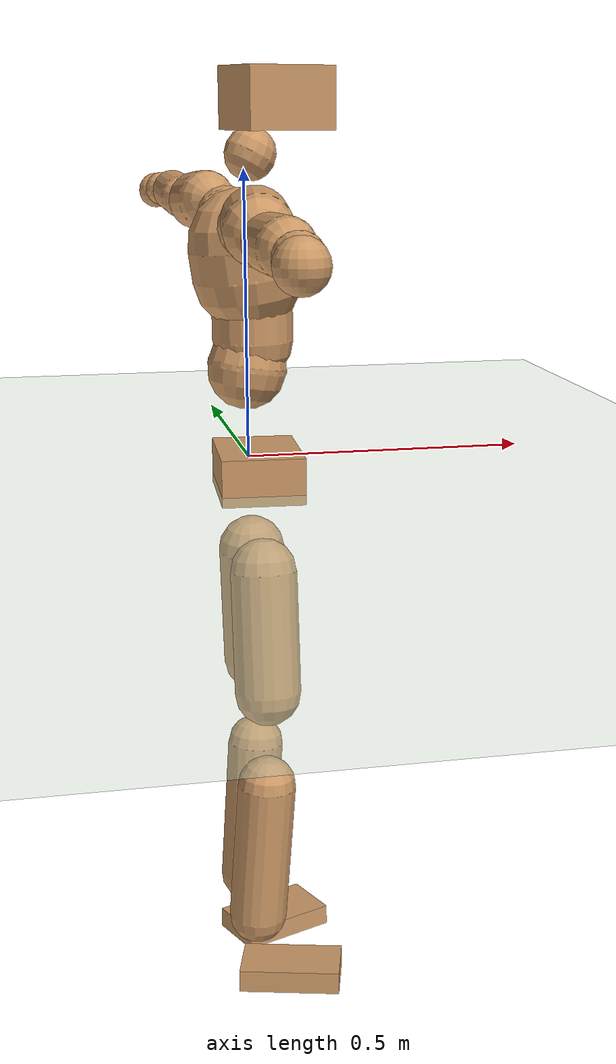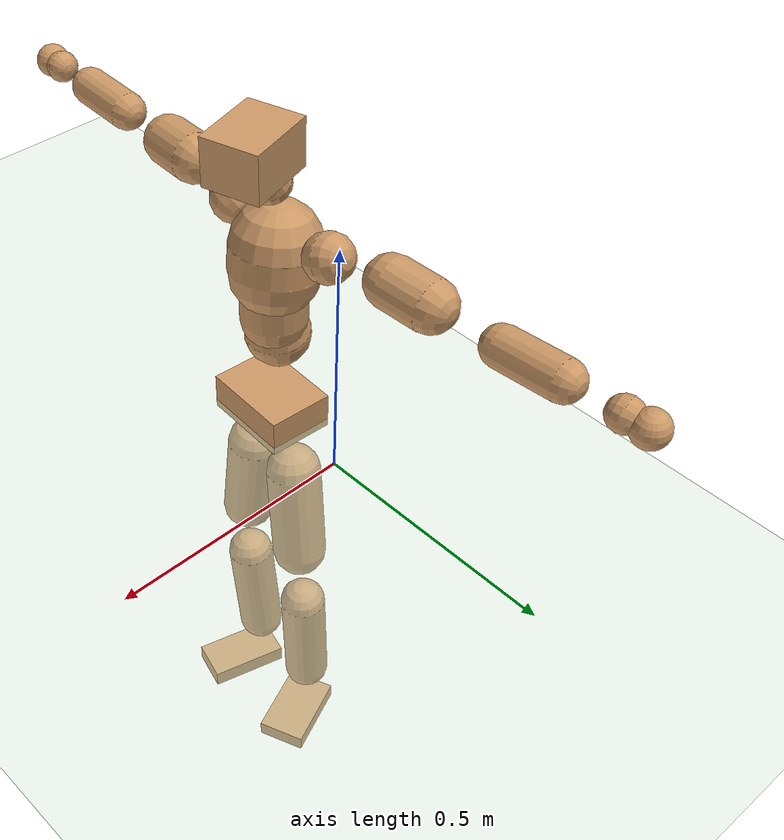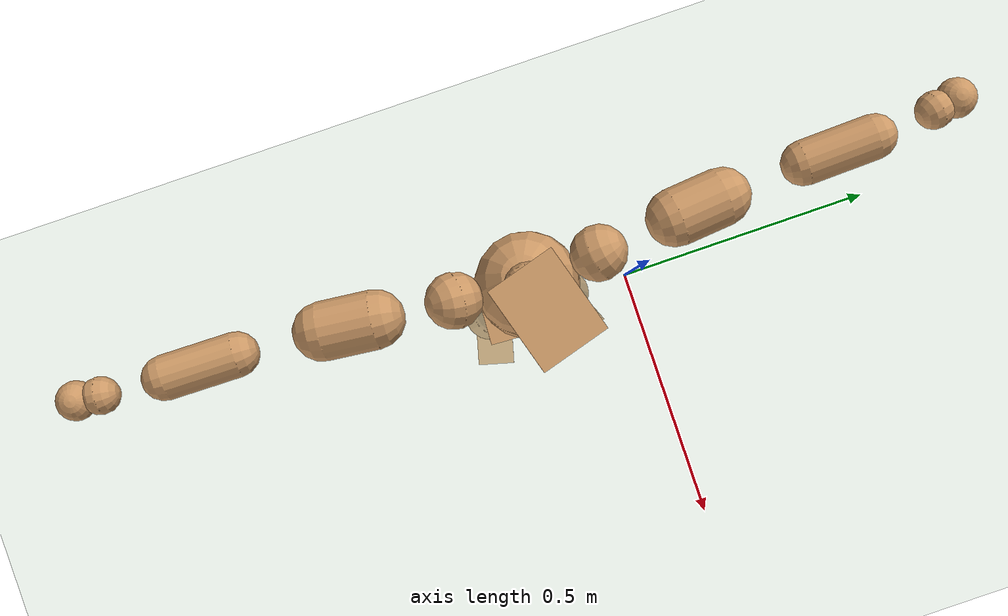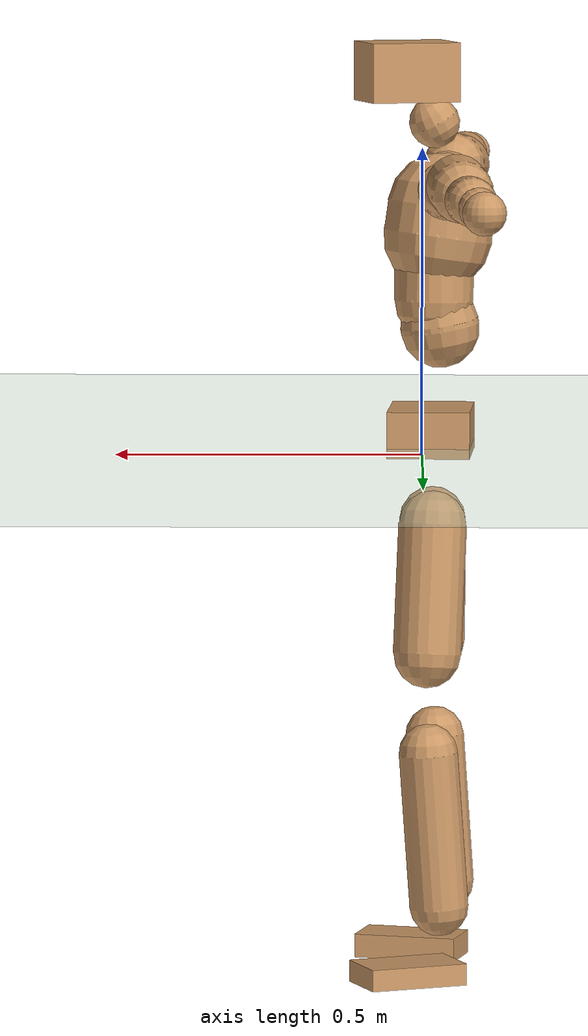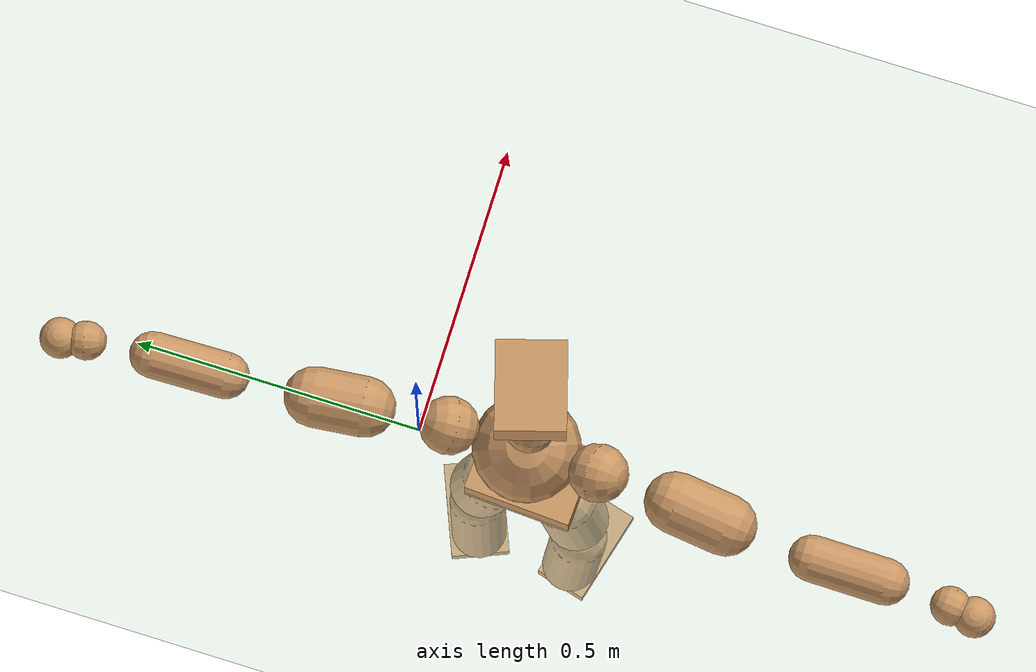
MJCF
<mujoco model="humanoid">
  <compiler coordinate="local" angle="radian"/>
  <default>
    <joint damping="0.0" armature="0.01" stiffness="0.0" limited="true"/>
    <geom conaffinity="1" condim="3" contype="7" margin="0.001" rgba="0.8 0.6 .4 1"/>
  </default>
  <asset>
    <texture type="skybox" builtin="gradient" rgb1=".4 .5 .6" rgb2="0 0 0" width="100" height="100"/>
    <texture builtin="flat" height="1278" mark="cross" markrgb="1 1 1" name="texgeom" random="0.01" rgb1="0.8 0.6 0.4" rgb2="0.8 0.6 0.4" type="cube" width="127"/>
    <texture builtin="checker" height="100" name="texplane" rgb1="0 0 0" rgb2="0.8 0.8 0.8" type="2d" width="100"/>
    <material name="MatPlane" reflectance="0.5" shininess="1" specular="1" texrepeat="60 60" texture="texplane"/>
    <material name="geom" texture="texgeom" texuniform="true"/>
  </asset>
  <worldbody>
    <light cutoff="100" diffuse="1 1 1" dir="-0 0 -1.3" directional="true" exponent="1" pos="0 0 1.3" specular=".1 .1 .1"/>
    <geom conaffinity="1" condim="3" name="floor" pos="0 0 0" rgba="0.8 0.9 0.8 1" size="100 100 .2" type="plane" material="MatPlane"/>
    <body name="Pelvis" pos="-0.0039 -0.2009 0.0273">
      <freejoint name="Pelvis"/>
      <geom type="box" contype="1" conaffinity="1" density="5359.374928" pos="-0.0115 0.0006 -0.0075" size="0.0682 0.0932 0.0385" quat="0.9996 0.0000 0.0000 -0.0267" name="Pelvis"/>
      <body name="L_Hip" pos="-0.018 0.0506 -0.0721">
        <joint name="L_Hip_x" type="hinge" pos="0 0 0" axis="1 0 0" stiffness="1600" damping="160" armature="0.02" range="-180.0000 180.0000"/>
        <joint name="L_Hip_y" type="hinge" pos="0 0 0" axis="0 1 0" stiffness="1600" damping="160" armature="0.02" range="-180.0000 180.0000"/>
        <joint name="L_Hip_z" type="hinge" pos="0 0 0" axis="0 0 1" stiffness="1600" damping="160" armature="0.02" range="-180.0000 180.0000"/>
        <geom type="capsule" contype="1" conaffinity="1" density="2040.816327" size="0.0565" fromto="0.0034 0.0110 -0.0858 0.0120 0.0382 -0.2982" name="L_Hip"/>
        <body name="L_Knee" pos="0.0154 0.0491 -0.384">
          <joint name="L_Knee_x" type="hinge" pos="0 0 0" axis="1 0 0" stiffness="1600" damping="160" armature="0.02" range="-180.0000 180.0000"/>
          <joint name="L_Knee_y" type="hinge" pos="0 0 0" axis="0 1 0" stiffness="1600" damping="160" armature="0.02" range="-180.0000 180.0000"/>
          <joint name="L_Knee_z" type="hinge" pos="0 0 0" axis="0 0 1" stiffness="1600" damping="160" armature="0.02" range="-180.0000 180.0000"/>
          <geom type="capsule" contype="1" conaffinity="1" density="1234.567901" size="0.0489" fromto="-0.0056 -0.0022 -0.0786 -0.0240 -0.0094 -0.3367" name="L_Knee"/>
          <body name="L_Ankle" pos="-0.0297 -0.0116 -0.4153">
            <joint name="L_Ankle_x" type="hinge" pos="0 0 0" axis="1 0 0" stiffness="1600" damping="160" armature="0.02" range="-180.0000 180.0000"/>
            <joint name="L_Ankle_y" type="hinge" pos="0 0 0" axis="0 1 0" stiffness="1600" damping="160" armature="0.02" range="-180.0000 180.0000"/>
            <joint name="L_Ankle_z" type="hinge" pos="0 0 0" axis="0 0 1" stiffness="1600" damping="160" armature="0.02" range="-180.0000 180.0000"/>
            <geom type="box" contype="1" conaffinity="1" density="999.99999" pos="0.0569 0.0234 -0.0291" size="0.0839 0.0521 0.018" quat="0.9811 0.0000 0.0000 0.1935" name="L_Ankle"/>
            <body name="L_Toe" pos="0.1139 0.0467 -0.0582">
              <joint name="L_Toe_x" type="hinge" pos="0 0 0" axis="1 0 0" stiffness="1000" damping="100" armature="0.02" range="-180.0000 180.0000"/>
              <joint name="L_Toe_y" type="hinge" pos="0 0 0" axis="0 1 0" stiffness="1000" damping="100" armature="0.02" range="-180.0000 180.0000"/>
              <joint name="L_Toe_z" type="hinge" pos="0 0 0" axis="0 0 1" stiffness="1000" damping="100" armature="0.02" range="-180.0000 180.0000"/>
              <geom type="box" contype="1" conaffinity="1" density="7892974.490424" pos="0.0000 0.0000 0.0296" size="0.001 0.0025 0.0009" quat="0.9802 0.0000 0.0000 0.1978" name="L_Toe"/>
            </body>
          </body>
        </body>
      </body>
      <body name="R_Hip" pos="-0.0151 -0.051 -0.0793">
        <joint name="R_Hip_x" type="hinge" pos="0 0 0" axis="1 0 0" stiffness="1600" damping="160" armature="0.02" range="-180.0000 180.0000"/>
        <joint name="R_Hip_y" type="hinge" pos="0 0 0" axis="0 1 0" stiffness="1600" damping="160" armature="0.02" range="-180.0000 180.0000"/>
        <joint name="R_Hip_z" type="hinge" pos="0 0 0" axis="0 0 1" stiffness="1600" damping="160" armature="0.02" range="-180.0000 180.0000"/>
        <geom type="capsule" contype="1" conaffinity="1" density="2040.816327" size="0.0555" fromto="0.0003 -0.0102 -0.0849 0.0009 -0.0348 -0.2902" name="R_Hip"/>
        <body name="R_Knee" pos="0.0012 -0.045 -0.3751">
          <joint name="R_Knee_x" type="hinge" pos="0 0 0" axis="1 0 0" stiffness="1600" damping="160" armature="0.02" range="-180.0000 180.0000"/>
          <joint name="R_Knee_y" type="hinge" pos="0 0 0" axis="0 1 0" stiffness="1600" damping="160" armature="0.02" range="-180.0000 180.0000"/>
          <joint name="R_Knee_z" type="hinge" pos="0 0 0" axis="0 0 1" stiffness="1600" damping="160" armature="0.02" range="-180.0000 180.0000"/>
          <geom type="capsule" contype="1" conaffinity="1" density="1234.567901" size="0.0495" fromto="-0.0055 0.0032 -0.0792 -0.0226 0.0131 -0.3264" name="R_Knee"/>
          <body name="R_Ankle" pos="-0.0281 0.0163 -0.4057">
            <joint name="R_Ankle_x" type="hinge" pos="0 0 0" axis="1 0 0" stiffness="1600" damping="160" armature="0.02" range="-180.0000 180.0000"/>
            <joint name="R_Ankle_y" type="hinge" pos="0 0 0" axis="0 1 0" stiffness="1600" damping="160" armature="0.02" range="-180.0000 180.0000"/>
            <joint name="R_Ankle_z" type="hinge" pos="0 0 0" axis="0 0 1" stiffness="1600" damping="160" armature="0.02" range="-180.0000 180.0000"/>
            <geom type="box" contype="1" conaffinity="1" density="1000" pos="0.0610 -0.0163 -0.0295" size="0.0865 0.0467 0.0197" quat="0.9915 0.0000 0.0000 -0.1301" name="R_Ankle"/>
            <body name="R_Toe" pos="0.122 -0.0326 -0.0591">
              <joint name="R_Toe_x" type="hinge" pos="0 0 0" axis="1 0 0" stiffness="1000" damping="100" armature="0.02" range="-180.0000 180.0000"/>
              <joint name="R_Toe_y" type="hinge" pos="0 0 0" axis="0 1 0" stiffness="1000" damping="100" armature="0.02" range="-180.0000 180.0000"/>
              <joint name="R_Toe_z" type="hinge" pos="0 0 0" axis="0 0 1" stiffness="1000" damping="100" armature="0.02" range="-180.0000 180.0000"/>
              <geom type="box" contype="1" conaffinity="1" density="8922204.929878" pos="0.0000 0.0000 0.0299" size="0.0009 0.0023 0.001" quat="0.9927 0.0000 0.0000 -0.1206" name="R_Toe"/>
            </body>
          </body>
        </body>
      </body>
      <body name="Torso" pos="-0.0357 0.0041 0.1065">
        <joint name="Torso_x" type="hinge" pos="0 0 0" axis="1 0 0" stiffness="2000" damping="200" armature="0.02" range="-180.0000 180.0000"/>
        <joint name="Torso_y" type="hinge" pos="0 0 0" axis="0 1 0" stiffness="2000" damping="200" armature="0.02" range="-180.0000 180.0000"/>
        <joint name="Torso_z" type="hinge" pos="0 0 0" axis="0 0 1" stiffness="2000" damping="200" armature="0.02" range="-180.0000 180.0000"/>
        <geom type="capsule" contype="1" conaffinity="1" density="2040.816327" size="0.0652" fromto="0.0107 0.0018 0.0643 0.0092 0.0015 0.0555" name="Torso"/>
        <body name="Spine" pos="0.0199 0.0033 0.1197">
          <joint name="Spine_x" type="hinge" pos="0 0 0" axis="1 0 0" stiffness="2000" damping="200" armature="0.02" range="-180.0000 180.0000"/>
          <joint name="Spine_y" type="hinge" pos="0 0 0" axis="0 1 0" stiffness="2000" damping="200" armature="0.02" range="-180.0000 180.0000"/>
          <joint name="Spine_z" type="hinge" pos="0 0 0" axis="0 0 1" stiffness="2000" damping="200" armature="0.02" range="-180.0000 180.0000"/>
          <geom type="capsule" contype="1" conaffinity="1" density="2040.816327" size="0.0657" fromto="-0.0007 -0.0009 0.0657 0.0002 0.0002 -0.0175" name="Spine"/>
          <body name="Chest" pos="-0.0005 -0.0006 0.0482">
            <joint name="Chest_x" type="hinge" pos="0 0 0" axis="1 0 0" stiffness="2000" damping="200" armature="0.02" range="-180.0000 180.0000"/>
            <joint name="Chest_y" type="hinge" pos="0 0 0" axis="0 1 0" stiffness="2000" damping="200" armature="0.02" range="-180.0000 180.0000"/>
            <joint name="Chest_z" type="hinge" pos="0 0 0" axis="0 0 1" stiffness="2000" damping="200" armature="0.02" range="-180.0000 180.0000"/>
            <geom type="capsule" contype="1" conaffinity="1" density="2040.816327" size="0.0902" fromto="-0.0128 -0.0052 0.0892 -0.0058 -0.0024 0.0404" name="Chest"/>
            <body name="Neck" pos="-0.0224 -0.0122 0.1868">
              <joint name="Neck_x" type="hinge" pos="0 0 0" axis="1 0 0" stiffness="1000" damping="100" armature="0.02" range="-180.0000 180.0000"/>
              <joint name="Neck_y" type="hinge" pos="0 0 0" axis="0 1 0" stiffness="1000" damping="100" armature="0.02" range="-180.0000 180.0000"/>
              <joint name="Neck_z" type="hinge" pos="0 0 0" axis="0 0 1" stiffness="1000" damping="100" armature="0.02" range="-180.0000 180.0000"/>
              <geom type="capsule" contype="1" conaffinity="1" density="1000" size="0.0416" fromto="0.0219 0.0058 0.0410 0.0228 0.0060 0.0427" name="Neck"/>
              <body name="Head" pos="0.0447 0.0118 0.0837">
                <joint name="Head_x" type="hinge" pos="0 0 0" axis="1 0 0" stiffness="1000" damping="100" armature="0.02" range="-180.0000 180.0000"/>
                <joint name="Head_y" type="hinge" pos="0 0 0" axis="0 1 0" stiffness="1000" damping="100" armature="0.02" range="-180.0000 180.0000"/>
                <joint name="Head_z" type="hinge" pos="0 0 0" axis="0 0 1" stiffness="1000" damping="100" armature="0.02" range="-180.0000 180.0000"/>
                <geom type="box" contype="1" conaffinity="1" density="2250.000085" pos="0.0234 0.0069 0.0428" size="0.0744 0.0585 0.0489" quat="0.9897 0.0000 0.0000 0.1428" name="Head"/>
              </body>
            </body>
            <body name="L_Thorax" pos="-0.0136 0.067 0.1021">
              <joint name="L_Thorax_x" type="hinge" pos="0 0 0" axis="1 0 0" stiffness="1000" damping="100" armature="0.02" range="-180.0000 180.0000"/>
              <joint name="L_Thorax_y" type="hinge" pos="0 0 0" axis="0 1 0" stiffness="1000" damping="100" armature="0.02" range="-180.0000 180.0000"/>
              <joint name="L_Thorax_z" type="hinge" pos="0 0 0" axis="0 0 1" stiffness="1000" damping="100" armature="0.02" range="-180.0000 180.0000"/>
              <geom type="capsule" contype="1" conaffinity="1" density="1000" size="0.0488" fromto="-0.0068 0.0575 0.0233 -0.0070 0.0593 0.0240" name="L_Thorax"/>
              <body name="L_Shoulder" pos="-0.0139 0.1168 0.0473">
                <joint name="L_Shoulder_x" type="hinge" pos="0 0 0" axis="1 0 0" stiffness="1000" damping="100" armature="0.02" range="-720.0000 720.0000"/>
                <joint name="L_Shoulder_y" type="hinge" pos="0 0 0" axis="0 1 0" stiffness="1000" damping="100" armature="0.02" range="-720.0000 720.0000"/>
                <joint name="L_Shoulder_z" type="hinge" pos="0 0 0" axis="0 0 1" stiffness="1000" damping="100" armature="0.02" range="-720.0000 720.0000"/>
                <geom type="capsule" contype="1" conaffinity="1" density="1000" size="0.0504" fromto="-0.0074 0.0799 -0.0054 -0.0153 0.1647 -0.0111" name="L_Shoulder"/>
                <body name="L_Elbow" pos="-0.0228 0.2445 -0.0165">
                  <joint name="L_Elbow_x" type="hinge" pos="0 0 0" axis="1 0 0" stiffness="1000" damping="100" armature="0.02" range="-720.0000 720.0000"/>
                  <joint name="L_Elbow_y" type="hinge" pos="0 0 0" axis="0 1 0" stiffness="1000" damping="100" armature="0.02" range="-720.0000 720.0000"/>
                  <joint name="L_Elbow_z" type="hinge" pos="0 0 0" axis="0 0 1" stiffness="1000" damping="100" armature="0.02" range="-720.0000 720.0000"/>
                  <geom type="capsule" contype="1" conaffinity="1" density="1000" size="0.0388" fromto="-0.0019 0.0687 0.0035 -0.0054 0.1927 0.0098" name="L_Elbow"/>
                  <body name="L_Wrist" pos="-0.0074 0.2614 0.0133">
                    <joint name="L_Wrist_x" type="hinge" pos="0 0 0" axis="1 0 0" stiffness="600" damping="60" armature="0.02" range="-180.0000 180.0000"/>
                    <joint name="L_Wrist_y" type="hinge" pos="0 0 0" axis="0 1 0" stiffness="600" damping="60" armature="0.02" range="-180.0000 180.0000"/>
                    <joint name="L_Wrist_z" type="hinge" pos="0 0 0" axis="0 0 1" stiffness="600" damping="60" armature="0.02" range="-180.0000 180.0000"/>
                    <geom type="capsule" contype="1" conaffinity="1" density="1000" size="0.0325" fromto="-0.0075 0.0413 -0.0051 -0.0079 0.0433 -0.0053" name="L_Wrist"/>
                    <body name="L_Hand" pos="-0.0154 0.0846 -0.0105">
                      <joint name="L_Hand_x" type="hinge" pos="0 0 0" axis="1 0 0" stiffness="600" damping="60" armature="0.02" range="-180.0000 180.0000"/>
                      <joint name="L_Hand_y" type="hinge" pos="0 0 0" axis="0 1 0" stiffness="600" damping="60" armature="0.02" range="-180.0000 180.0000"/>
                      <joint name="L_Hand_z" type="hinge" pos="0 0 0" axis="0 0 1" stiffness="600" damping="60" armature="0.02" range="-180.0000 180.0000"/>
                      <geom type="sphere" contype="1" conaffinity="1" density="1000" size="0.0344" pos="0.0000 0.0000 0.0000" name="L_Hand"/>
                    </body>
                  </body>
                </body>
              </body>
            </body>
            <body name="R_Thorax" pos="-0.0197 -0.0775 0.0998">
              <joint name="R_Thorax_x" type="hinge" pos="0 0 0" axis="1 0 0" stiffness="1000" damping="100" armature="0.02" range="-180.0000 180.0000"/>
              <joint name="R_Thorax_y" type="hinge" pos="0 0 0" axis="0 1 0" stiffness="1000" damping="100" armature="0.02" range="-180.0000 180.0000"/>
              <joint name="R_Thorax_z" type="hinge" pos="0 0 0" axis="0 0 1" stiffness="1000" damping="100" armature="0.02" range="-180.0000 180.0000"/>
              <geom type="capsule" contype="1" conaffinity="1" density="1000" size="0.0491" fromto="-0.0030 -0.0525 0.0240 -0.0031 -0.0543 0.0248" name="R_Thorax"/>
              <body name="R_Shoulder" pos="-0.0061 -0.1068 0.0489">
                <joint name="R_Shoulder_x" type="hinge" pos="0 0 0" axis="1 0 0" stiffness="1000" damping="100" armature="0.02" range="-720.0000 720.0000"/>
                <joint name="R_Shoulder_y" type="hinge" pos="0 0 0" axis="0 1 0" stiffness="1000" damping="100" armature="0.02" range="-720.0000 720.0000"/>
                <joint name="R_Shoulder_z" type="hinge" pos="0 0 0" axis="0 0 1" stiffness="1000" damping="100" armature="0.02" range="-720.0000 720.0000"/>
                <geom type="capsule" contype="1" conaffinity="1" density="1000" size="0.0511" fromto="-0.0089 -0.0804 -0.0058 -0.0188 -0.1706 -0.0124" name="R_Shoulder"/>
                <body name="R_Elbow" pos="-0.0276 -0.251 -0.0183">
                  <joint name="R_Elbow_x" type="hinge" pos="0 0 0" axis="1 0 0" stiffness="1000" damping="100" armature="0.02" range="-720.0000 720.0000"/>
                  <joint name="R_Elbow_y" type="hinge" pos="0 0 0" axis="0 1 0" stiffness="1000" damping="100" armature="0.02" range="-720.0000 720.0000"/>
                  <joint name="R_Elbow_z" type="hinge" pos="0 0 0" axis="0 0 1" stiffness="1000" damping="100" armature="0.02" range="-720.0000 720.0000"/>
                  <geom type="capsule" contype="1" conaffinity="1" density="1000" size="0.0389" fromto="-0.0010 -0.0688 0.0020 -0.0027 -0.1949 0.0057" name="R_Elbow"/>
                  <body name="R_Wrist" pos="-0.0037 -0.2638 0.0077">
                    <joint name="R_Wrist_x" type="hinge" pos="0 0 0" axis="1 0 0" stiffness="600" damping="60" armature="0.02" range="-180.0000 180.0000"/>
                    <joint name="R_Wrist_y" type="hinge" pos="0 0 0" axis="0 1 0" stiffness="600" damping="60" armature="0.02" range="-180.0000 180.0000"/>
                    <joint name="R_Wrist_z" type="hinge" pos="0 0 0" axis="0 0 1" stiffness="600" damping="60" armature="0.02" range="-180.0000 180.0000"/>
                    <geom type="capsule" contype="1" conaffinity="1" density="1000" size="0.0326" fromto="-0.0051 -0.0417 -0.0041 -0.0053 -0.0436 -0.0043" name="R_Wrist"/>
                    <body name="R_Hand" pos="-0.0104 -0.0853 -0.0083">
                      <joint name="R_Hand_x" type="hinge" pos="0 0 0" axis="1 0 0" stiffness="600" damping="60" armature="0.02" range="-180.0000 180.0000"/>
                      <joint name="R_Hand_y" type="hinge" pos="0 0 0" axis="0 1 0" stiffness="600" damping="60" armature="0.02" range="-180.0000 180.0000"/>
                      <joint name="R_Hand_z" type="hinge" pos="0 0 0" axis="0 0 1" stiffness="600" damping="60" armature="0.02" range="-180.0000 180.0000"/>
                      <geom type="sphere" contype="1" conaffinity="1" density="1000" size="0.0344" pos="0.0000 0.0000 0.0000" name="R_Hand"/>
                    </body>
                  </body>
                </body>
              </body>
            </body>
          </body>
        </body>
      </body>
    </body>
  </worldbody>
  <actuator>
    <motor name="L_Hip_x" joint="L_Hip_x" gear="500"/>
    <motor name="L_Hip_y" joint="L_Hip_y" gear="500"/>
    <motor name="L_Hip_z" joint="L_Hip_z" gear="500"/>
    <motor name="L_Knee_x" joint="L_Knee_x" gear="500"/>
    <motor name="L_Knee_y" joint="L_Knee_y" gear="500"/>
    <motor name="L_Knee_z" joint="L_Knee_z" gear="500"/>
    <motor name="L_Ankle_x" joint="L_Ankle_x" gear="500"/>
    <motor name="L_Ankle_y" joint="L_Ankle_y" gear="500"/>
    <motor name="L_Ankle_z" joint="L_Ankle_z" gear="500"/>
    <motor name="L_Toe_x" joint="L_Toe_x" gear="500"/>
    <motor name="L_Toe_y" joint="L_Toe_y" gear="500"/>
    <motor name="L_Toe_z" joint="L_Toe_z" gear="500"/>
    <motor name="R_Hip_x" joint="R_Hip_x" gear="500"/>
    <motor name="R_Hip_y" joint="R_Hip_y" gear="500"/>
    <motor name="R_Hip_z" joint="R_Hip_z" gear="500"/>
    <motor name="R_Knee_x" joint="R_Knee_x" gear="500"/>
    <motor name="R_Knee_y" joint="R_Knee_y" gear="500"/>
    <motor name="R_Knee_z" joint="R_Knee_z" gear="500"/>
    <motor name="R_Ankle_x" joint="R_Ankle_x" gear="500"/>
    <motor name="R_Ankle_y" joint="R_Ankle_y" gear="500"/>
    <motor name="R_Ankle_z" joint="R_Ankle_z" gear="500"/>
    <motor name="R_Toe_x" joint="R_Toe_x" gear="500"/>
    <motor name="R_Toe_y" joint="R_Toe_y" gear="500"/>
    <motor name="R_Toe_z" joint="R_Toe_z" gear="500"/>
    <motor name="Torso_x" joint="Torso_x" gear="500"/>
    <motor name="Torso_y" joint="Torso_y" gear="500"/>
    <motor name="Torso_z" joint="Torso_z" gear="500"/>
    <motor name="Spine_x" joint="Spine_x" gear="500"/>
    <motor name="Spine_y" joint="Spine_y" gear="500"/>
    <motor name="Spine_z" joint="Spine_z" gear="500"/>
    <motor name="Chest_x" joint="Chest_x" gear="500"/>
    <motor name="Chest_y" joint="Chest_y" gear="500"/>
    <motor name="Chest_z" joint="Chest_z" gear="500"/>
    <motor name="Neck_x" joint="Neck_x" gear="500"/>
    <motor name="Neck_y" joint="Neck_y" gear="500"/>
    <motor name="Neck_z" joint="Neck_z" gear="500"/>
    <motor name="Head_x" joint="Head_x" gear="500"/>
    <motor name="Head_y" joint="Head_y" gear="500"/>
    <motor name="Head_z" joint="Head_z" gear="500"/>
    <motor name="L_Thorax_x" joint="L_Thorax_x" gear="500"/>
    <motor name="L_Thorax_y" joint="L_Thorax_y" gear="500"/>
    <motor name="L_Thorax_z" joint="L_Thorax_z" gear="500"/>
    <motor name="L_Shoulder_x" joint="L_Shoulder_x" gear="500"/>
    <motor name="L_Shoulder_y" joint="L_Shoulder_y" gear="500"/>
    <motor name="L_Shoulder_z" joint="L_Shoulder_z" gear="500"/>
    <motor name="L_Elbow_x" joint="L_Elbow_x" gear="500"/>
    <motor name="L_Elbow_y" joint="L_Elbow_y" gear="500"/>
    <motor name="L_Elbow_z" joint="L_Elbow_z" gear="500"/>
    <motor name="L_Wrist_x" joint="L_Wrist_x" gear="500"/>
    <motor name="L_Wrist_y" joint="L_Wrist_y" gear="500"/>
    <motor name="L_Wrist_z" joint="L_Wrist_z" gear="500"/>
    <motor name="L_Hand_x" joint="L_Hand_x" gear="500"/>
    <motor name="L_Hand_y" joint="L_Hand_y" gear="500"/>
    <motor name="L_Hand_z" joint="L_Hand_z" gear="500"/>
    <motor name="R_Thorax_x" joint="R_Thorax_x" gear="500"/>
    <motor name="R_Thorax_y" joint="R_Thorax_y" gear="500"/>
    <motor name="R_Thorax_z" joint="R_Thorax_z" gear="500"/>
    <motor name="R_Shoulder_x" joint="R_Shoulder_x" gear="500"/>
    <motor name="R_Shoulder_y" joint="R_Shoulder_y" gear="500"/>
    <motor name="R_Shoulder_z" joint="R_Shoulder_z" gear="500"/>
    <motor name="R_Elbow_x" joint="R_Elbow_x" gear="500"/>
    <motor name="R_Elbow_y" joint="R_Elbow_y" gear="500"/>
    <motor name="R_Elbow_z" joint="R_Elbow_z" gear="500"/>
    <motor name="R_Wrist_x" joint="R_Wrist_x" gear="500"/>
    <motor name="R_Wrist_y" joint="R_Wrist_y" gear="500"/>
    <motor name="R_Wrist_z" joint="R_Wrist_z" gear="500"/>
    <motor name="R_Hand_x" joint="R_Hand_x" gear="500"/>
    <motor name="R_Hand_y" joint="R_Hand_y" gear="500"/>
    <motor name="R_Hand_z" joint="R_Hand_z" gear="500"/>
  </actuator>
  <contact>
    <exclude body1="Torso" body2="Chest"/>
    <exclude body1="Head" body2="Chest"/>
    <exclude body1="R_Knee" body2="R_Toe"/>
    <exclude body1="R_Knee" body2="L_Ankle"/>
    <exclude body1="R_Knee" body2="L_Toe"/>
    <exclude body1="L_Knee" body2="L_Toe"/>
    <exclude body1="L_Knee" body2="R_Ankle"/>
    <exclude body1="L_Knee" body2="R_Toe"/>
    <exclude body1="L_Shoulder" body2="Chest"/>
    <exclude body1="R_Shoulder" body2="Chest"/>
  </contact>
  <sensor/>
  <size njmax="700" nconmax="700"/>
</mujoco>
